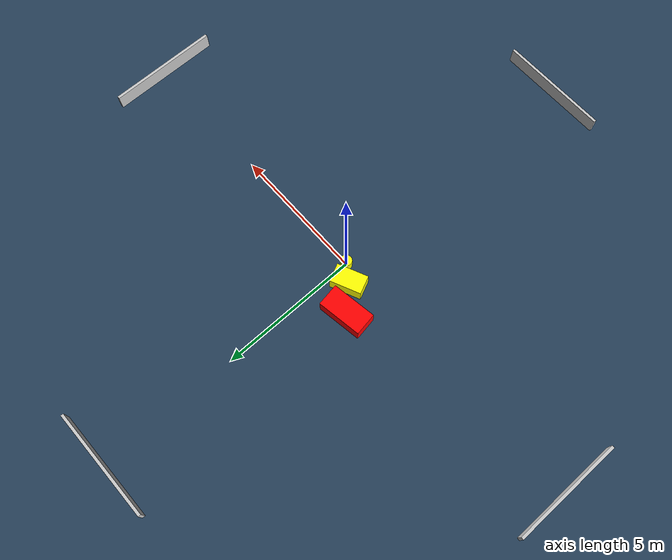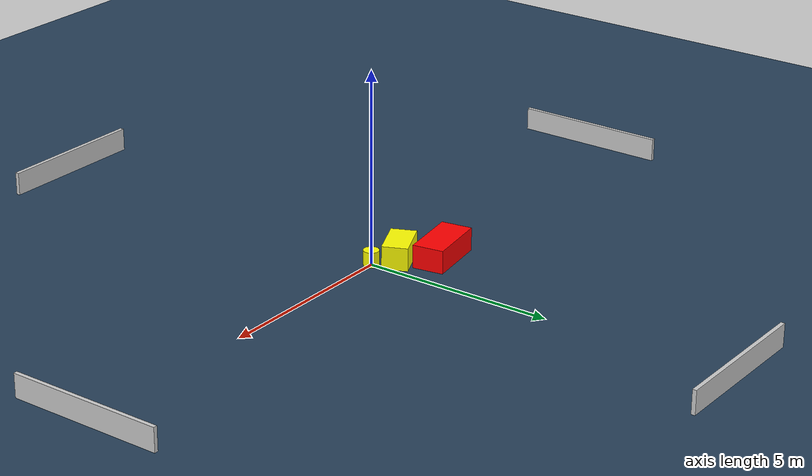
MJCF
<?xml version="1.0" ?>
<mujoco model="generated_environment">
  <option timestep="0.01" integrator="RK4" cone="elliptic"/>
  <default>
    <geom density="1"/>
  </default>
  <asset>
    <texture builtin="gradient" height="3072" name="skybox" rgb1="0.3 0.5 0.7" rgb2="0 0 0" type="skybox" width="512"/>
    <texture builtin="checker" height="300" name="groundplane" rgb1="0.2 0.3 0.4" rgb2="0.1 0.2 0.3" type="2d" width="300"/>
    <material name="groundplane" reflectance="0.2" texrepeat="5 5" texture="groundplane"/>
  </asset>
  <worldbody>
    <light dir="0 0 -1" directional="true" pos="0 0 1.5"/>
    <geom condim="3" friction="0.5 0.005 0.001" material="groundplane" name="floor" pos="0 0 0" size="0 0 0.05" type="plane"/>
    <body name="walls">
      <geom name="wall_1" condim="4" pos="-10.0 0.0 0.3" rgba="0.800000011920929 0.800000011920929 0.800000011920929 1.0" size="0.05 2.0 0.3" type="box"/>
      <geom name="wall_2" condim="4" pos="10.0 0.0 0.3" rgba="0.800000011920929 0.800000011920929 0.800000011920929 1.0" size="0.05 2.0 0.3" type="box"/>
      <geom name="wall_3" condim="4" pos="0.0 -10.0 0.3" rgba="0.800000011920929 0.800000011920929 0.800000011920929 1.0" size="2.0 0.05 0.3" type="box"/>
      <geom name="wall_4" condim="4" pos="0.0 10.0 0.3" rgba="0.800000011920929 0.800000011920929 0.800000011920929 1.0" size="2.0 0.05 0.3" type="box"/>
    </body>
    <body name="robot">
      <joint name="joint_x" type="slide" pos="0 0 0" axis="1 0 0"/>
      <joint name="joint_y" type="slide" pos="0 0 0" axis="0 1 0"/>
      <geom name="robot" type="cylinder" pos="0.0 0.0 0.2" size="0.2 0.2 0.0" mass="5.0" friction="1.0 0.005 0.0001" condim="4" rgba="1.0 1.0 0.0 1.0"/>
    </body>
    <body name="obstacle_1_movable">
      <geom name="obstacle_1_movable" condim="4" pos="-0.5875365737519334 0.4090872349821574 0.3" euler="0 0 204.46241702828908" friction="0.0 0.005 0.001" rgba="1.0 1.0 0.0 1.0" size="0.5568345385118232 0.3277913204420323 0.3" type="box" mass="0.1"/>
      <joint type="free"/>
    </body>
    <body name="obstacle_2_static">
      <geom name="obstacle_2_static" condim="4" pos="-1.3217985717038983 1.1698912698116497 0.3" euler="0 0 9.004034884627302" friction="0.0 0.005 0.001" rgba="1.0 0.0 0.0 1.0" size="0.7994789505782529 0.4018875147594572 0.3" type="box"/>
    </body>
  </worldbody>
  <actuator>
    <motor name="actuator_x" joint="joint_x" gear="1" ctrlrange="-1 1"/>
    <motor name="actuator_y" joint="joint_y" gear="1" ctrlrange="-1 1"/>
  </actuator>
</mujoco>
